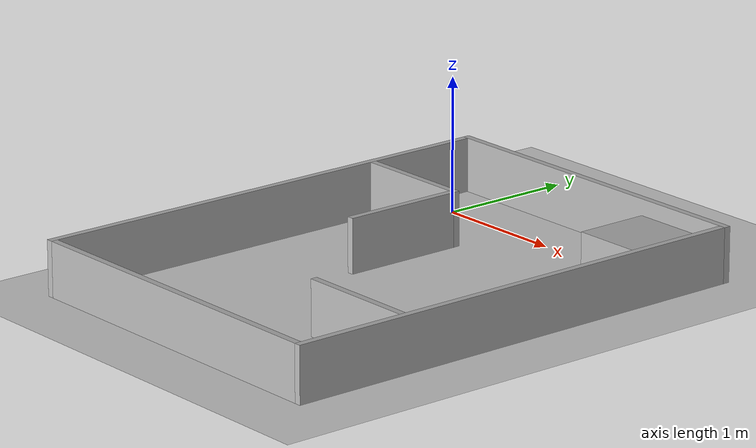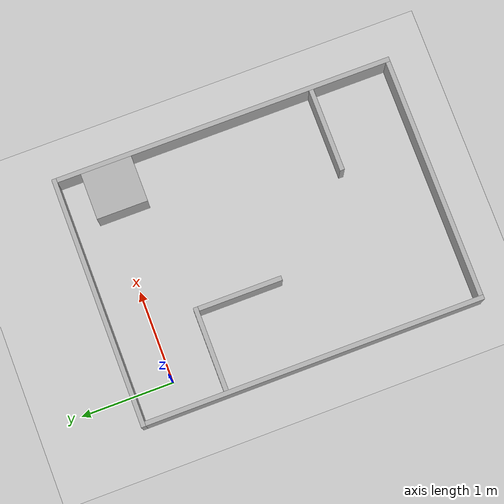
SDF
<?xml version="1.0"?>
<!-- tools/map_to_world.py 로 맵에서 만든 월드: maze_room -->
<sdf version="1.6">
  <world name="maze_room">
    <!-- 모델 위치를 서비스로 바꿀 수 있게 (/set_entity_state): tools/sim_mover.py 로 움직이는 장애물 시험 -->
    <plugin name="gazebo_ros_state" filename="libgazebo_ros_state.so">
      <ros><namespace>/</namespace></ros>
      <update_rate>20.0</update_rate>
    </plugin>
    <include><uri>model://ground_plane</uri></include>
    <include><uri>model://sun</uri></include>
    <scene>
      <shadows>false</shadows>
    </scene>
    <physics type="ode">
      <real_time_update_rate>1000.0</real_time_update_rate>
      <max_step_size>0.001</max_step_size>
      <real_time_factor>1</real_time_factor>
    </physics>
    <model name="walls">
      <static>true</static>
      <link name="link">
        <collision name="c0">
          <pose>1.000 0.425 0.200 0 0 0</pose>
          <geometry><box><size>2.700 0.050 0.400</size></box></geometry>
        </collision>
        <visual name="v0">
          <pose>1.000 0.425 0.200 0 0 0</pose>
          <geometry><box><size>2.700 0.050 0.400</size></box></geometry>
          <material><ambient>0.6 0.6 0.6 1</ambient><diffuse>0.7 0.7 0.7 1</diffuse></material>
        </visual>
        <collision name="c1">
          <pose>-0.325 -1.425 0.200 0 0 0</pose>
          <geometry><box><size>0.050 3.650 0.400</size></box></geometry>
        </collision>
        <visual name="v1">
          <pose>-0.325 -1.425 0.200 0 0 0</pose>
          <geometry><box><size>0.050 3.650 0.400</size></box></geometry>
          <material><ambient>0.6 0.6 0.6 1</ambient><diffuse>0.7 0.7 0.7 1</diffuse></material>
        </visual>
        <collision name="c2">
          <pose>2.325 -1.425 0.200 0 0 0</pose>
          <geometry><box><size>0.050 3.650 0.400</size></box></geometry>
        </collision>
        <visual name="v2">
          <pose>2.325 -1.425 0.200 0 0 0</pose>
          <geometry><box><size>0.050 3.650 0.400</size></box></geometry>
          <material><ambient>0.6 0.6 0.6 1</ambient><diffuse>0.7 0.7 0.7 1</diffuse></material>
        </visual>
        <collision name="c3">
          <pose>2.050 -0.125 0.200 0 0 0</pose>
          <geometry><box><size>0.500 0.550 0.400</size></box></geometry>
        </collision>
        <visual name="v3">
          <pose>2.050 -0.125 0.200 0 0 0</pose>
          <geometry><box><size>0.500 0.550 0.400</size></box></geometry>
          <material><ambient>0.6 0.6 0.6 1</ambient><diffuse>0.7 0.7 0.7 1</diffuse></material>
        </visual>
        <collision name="c4">
          <pose>0.150 -0.475 0.200 0 0 0</pose>
          <geometry><box><size>0.900 0.050 0.400</size></box></geometry>
        </collision>
        <visual name="v4">
          <pose>0.150 -0.475 0.200 0 0 0</pose>
          <geometry><box><size>0.900 0.050 0.400</size></box></geometry>
          <material><ambient>0.6 0.6 0.6 1</ambient><diffuse>0.7 0.7 0.7 1</diffuse></material>
        </visual>
        <collision name="c5">
          <pose>0.575 -0.950 0.200 0 0 0</pose>
          <geometry><box><size>0.050 0.900 0.400</size></box></geometry>
        </collision>
        <visual name="v5">
          <pose>0.575 -0.950 0.200 0 0 0</pose>
          <geometry><box><size>0.050 0.900 0.400</size></box></geometry>
          <material><ambient>0.6 0.6 0.6 1</ambient><diffuse>0.7 0.7 0.7 1</diffuse></material>
        </visual>
        <collision name="c6">
          <pose>1.850 -2.375 0.200 0 0 0</pose>
          <geometry><box><size>0.900 0.050 0.400</size></box></geometry>
        </collision>
        <visual name="v6">
          <pose>1.850 -2.375 0.200 0 0 0</pose>
          <geometry><box><size>0.900 0.050 0.400</size></box></geometry>
          <material><ambient>0.6 0.6 0.6 1</ambient><diffuse>0.7 0.7 0.7 1</diffuse></material>
        </visual>
        <collision name="c7">
          <pose>1.000 -3.225 0.200 0 0 0</pose>
          <geometry><box><size>2.600 0.050 0.400</size></box></geometry>
        </collision>
        <visual name="v7">
          <pose>1.000 -3.225 0.200 0 0 0</pose>
          <geometry><box><size>2.600 0.050 0.400</size></box></geometry>
          <material><ambient>0.6 0.6 0.6 1</ambient><diffuse>0.7 0.7 0.7 1</diffuse></material>
        </visual>
      </link>
    </model>
  </world>
</sdf>
